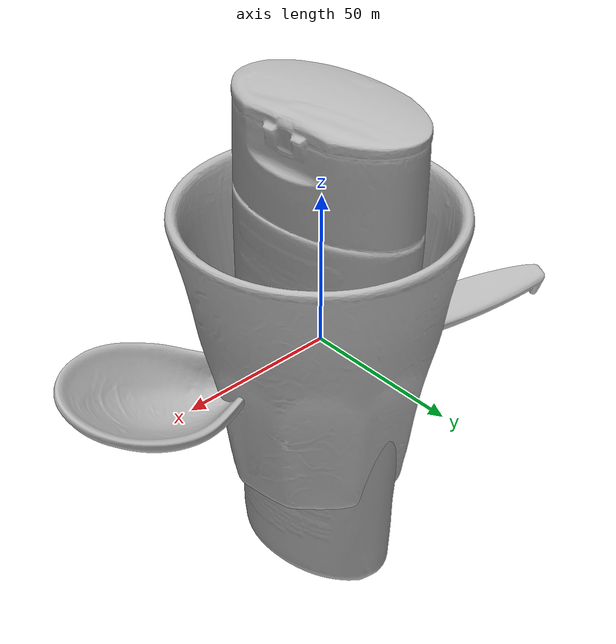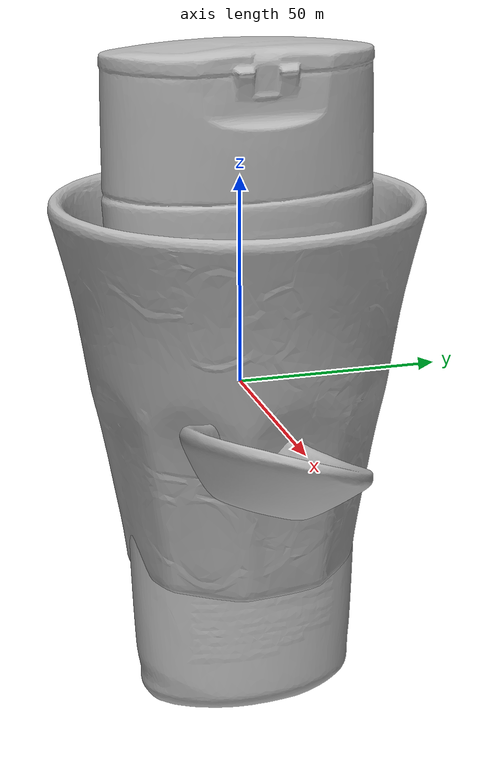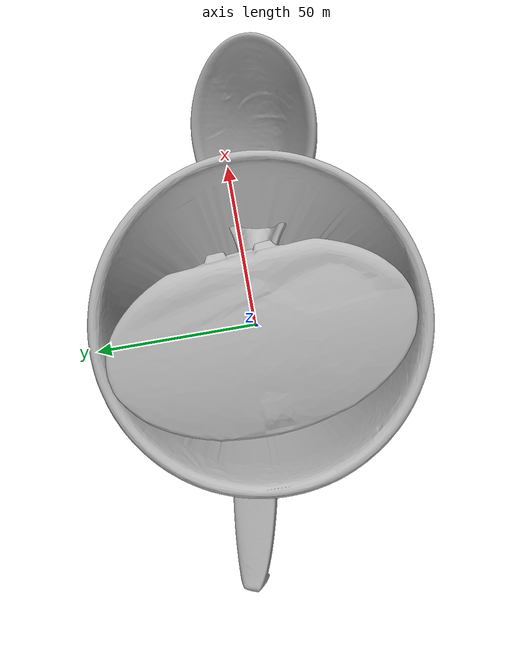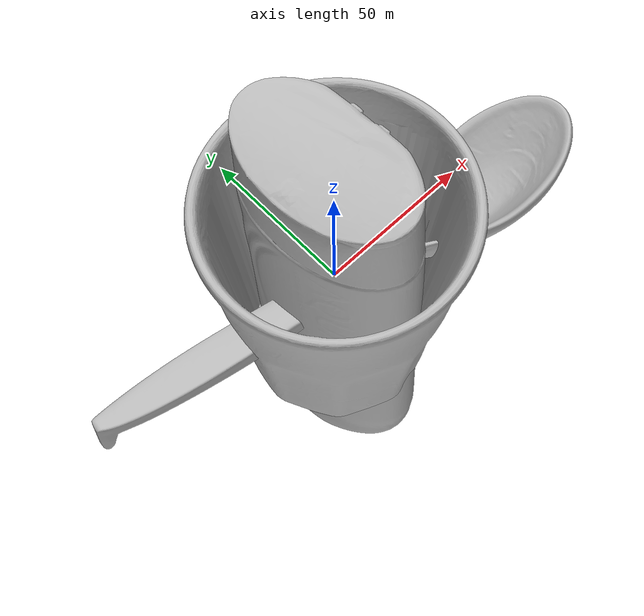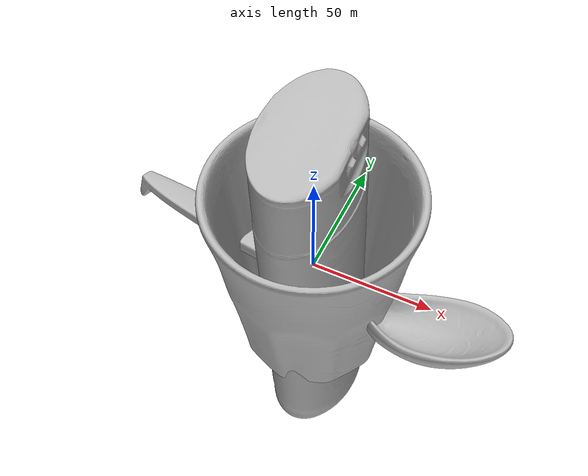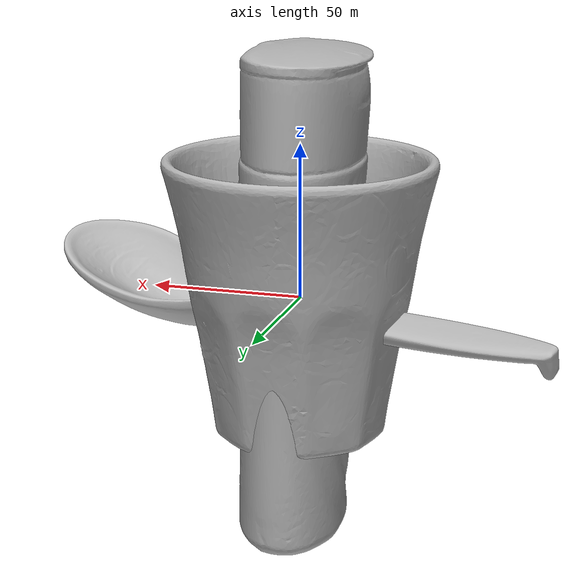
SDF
<sdf version="1.4">
 <world name="default">
  <light name="light1" type="point">
   <pose>0 0 1 0 0 0</pose>
   <diffuse>3 3 3 1</diffuse>
   <specular>3 3 3 1</specular>
  </light>
  <light name="light2" type="point">
   <pose>0 0.5 2 0 0 0</pose>
   <diffuse>1 1 1 1</diffuse>
   <specular>1 1 1 1</specular>
  </light>
  <light name="light3" type="point">
   <pose>0 0.5 2 0 0 0</pose>
   <diffuse>3 3 3 1</diffuse>
   <specular>3 3 3 1</specular>
  </light>
  <scene><ambient>0.7 0.7 0.7</ambient></scene>
  <model name="bottle1">
   <link name="link_bottle1">
    <collision name="default">
     <geometry>
      <mesh><uri>model://pure_zhen/collision_meshes/collision.obj</uri><scale>1.0 1.0 1.0</scale></mesh>
     </geometry>
     <surface>
      <friction><ode><mu>0.5</mu><mu2>0.5</mu2></ode></friction>
      <contact><ode><max_vel>0</max_vel><min_depth>0.0001</min_depth><kp>1e8</kp></ode></contact>
     </surface>
    </collision>
    <visual name="default">
     <geometry>
      <mesh><uri>model://pure_zhen/visual_meshes/visual.dae</uri><scale>1.0 1.0 1.0</scale></mesh>
     </geometry>
    </visual>
    <inertial>
     <mass>0.21128538250923157</mass>
     <pose>-8.582300506532192e-05 0.0002452346670906991 -0.0015797390369698405 -0.027642443229877835 0.005619248866174896 0.3057200614584077</pose>
     <inertia>
      <ixx>0.00063332287</ixx>
      <iyy>0.00063348823</iyy>
      <izz>6.6904315e-05</izz>
      <ixy>0</ixy>
      <ixz>0</ixz>
      <iyz>0</iyz>
     </inertia>
    </inertial>
   </link>
   <pose>0.015812527388334274 -0.37392458319664 0.0919550359249115 0.015157134821617376 0.01212956328992146 -1.8358145404571007</pose>
  </model>
  <model name="bottle2">
   <link name="link_bottle2">
    <collision name="default">
     <geometry>
      <mesh><uri>model://conditioner/collision_meshes/collision.obj</uri><scale>1.0 1.0 1.0</scale></mesh>
     </geometry>
     <surface>
      <friction><ode><mu>0.5</mu><mu2>0.5</mu2></ode></friction>
      <contact><ode><max_vel>0</max_vel><min_depth>0.0001</min_depth><kp>1e8</kp></ode></contact>
     </surface>
    </collision>
    <visual name="default">
     <geometry>
      <mesh><uri>model://conditioner/visual_meshes/visual.dae</uri><scale>1.0 1.0 1.0</scale></mesh>
     </geometry>
    </visual>
    <inertial>
     <mass>0.3611464500427246</mass>
     <pose>-0.00055994390277192 -0.0001729748910292983 0.004359682556241751 -0.005038374424784669 0.01530604350153207 0.015072341368129788</pose>
     <inertia>
      <ixx>0.00078562286</ixx>
      <iyy>0.0008415716</iyy>
      <izz>0.00012113213</izz>
      <ixy>0</ixy>
      <ixz>0</ixz>
      <iyz>0</iyz>
     </inertia>
    </inertial>
   </link>
   <pose>0.24106314778327942 -0.20936289429664612 0.08122974634170532 0.036892153375816764 -0.01566026344724022 -1.5225181827632999</pose>
  </model>
  <model name="silverware1">
   <link name="link_silverware1">
    <collision name="default">
     <geometry>
      <mesh><uri>model://doraemon_spoon/collision_meshes/collision.obj</uri><scale>1.0 1.0 1.0</scale></mesh>
     </geometry>
     <surface>
      <friction><ode><mu>0.5</mu><mu2>0.5</mu2></ode></friction>
      <contact><ode><max_vel>0</max_vel><min_depth>0.0001</min_depth><kp>1e8</kp></ode></contact>
     </surface>
    </collision>
    <visual name="default">
     <geometry>
      <mesh><uri>model://doraemon_spoon/visual_meshes/visual.dae</uri><scale>1.0 1.0 1.0</scale></mesh>
     </geometry>
    </visual>
    <inertial>
     <mass>0.02099660225212574</mass>
     <pose>-0.02216508239507675 -0.0006374581134878099 -0.003332545980811119 -0.009147162014623967 0.07380421234862718 -0.01412382746948542</pose>
     <inertia>
      <ixx>1.6446534e-06</ixx>
      <iyy>4.671061e-05</iyy>
      <izz>4.7504738e-05</izz>
      <ixy>0</ixy>
      <ixz>0</ixz>
      <iyz>0</iyz>
     </inertia>
    </inertial>
   </link>
   <pose>0.16969934105873108 -0.36399656534194946 0.014739345759153366 0.27903639720652457 -0.010337102810404983 2.9633619625359033</pose>
  </model>
  <model name="stationery1">
   <link name="link_stationery1">
    <collision name="default">
     <geometry>
      <mesh><uri>model://correction_fuid/collision_meshes/collision.obj</uri><scale>1.0 1.0 1.0</scale></mesh>
     </geometry>
     <surface>
      <friction><ode><mu>0.5</mu><mu2>0.5</mu2></ode></friction>
      <contact><ode><max_vel>0</max_vel><min_depth>0.0001</min_depth><kp>1e8</kp></ode></contact>
     </surface>
    </collision>
    <visual name="default">
     <geometry>
      <mesh><uri>model://correction_fuid/visual_meshes/visual.dae</uri><scale>1.0 1.0 1.0</scale></mesh>
     </geometry>
    </visual>
    <inertial>
     <mass>0.046645622700452805</mass>
     <pose>-0.00012557735317386687 -0.0009722909890115261 -0.001618212671019137 -0.010846607840907904 0.019488357502694276 -0.015992455488392</pose>
     <inertia>
      <ixx>4.5177083e-05</ixx>
      <iyy>2.7341744e-06</iyy>
      <izz>4.635291e-05</izz>
      <ixy>0</ixy>
      <ixz>0</ixz>
      <iyz>0</iyz>
     </inertia>
    </inertial>
   </link>
   <pose>-0.08680958300828934 0.1193852424621582 0.009632832370698452 -0.0017269159065449577 -0.05616888569158246 -0.019183644800428647</pose>
  </model>
  <model name="bowl1">
   <link name="link_bowl1">
    <collision name="default">
     <geometry>
      <mesh><uri>model://doraemon_bowl/collision_meshes/collision.obj</uri><scale>1.0 1.0 1.0</scale></mesh>
     </geometry>
     <surface>
      <friction><ode><mu>0.5</mu><mu2>0.5</mu2></ode></friction>
      <contact><ode><max_vel>0</max_vel><min_depth>0.0001</min_depth><kp>1e8</kp></ode></contact>
     </surface>
    </collision>
    <visual name="default">
     <geometry>
      <mesh><uri>model://doraemon_bowl/visual_meshes/visual.dae</uri><scale>1.0 1.0 1.0</scale></mesh>
     </geometry>
    </visual>
    <inertial>
     <mass>0.11811670660972595</mass>
     <pose>-0.014629551209509373 0.0004857121384702623 -0.0020864885300397873 -0.00509396228069995 -0.10568398533611668 -0.02642645986873745</pose>
     <inertia>
      <ixx>0.00016378764</ixx>
      <iyy>0.00021554313</iyy>
      <izz>0.00031711452</izz>
      <ixy>0</ixy>
      <ixz>0</ixz>
      <iyz>0</iyz>
     </inertia>
    </inertial>
   </link>
   <pose>-0.02682371437549591 -0.28902503848075867 0.02590586058795452 0.008606158726446088 0.006331937002608426 0.8977657013234489</pose>
  </model>
  <model name="cup1">
   <link name="link_cup1">
    <collision name="default">
     <geometry>
      <mesh><uri>model://hello_kitty_cup/collision_meshes/collision.obj</uri><scale>1.0 1.0 1.0</scale></mesh>
     </geometry>
     <surface>
      <friction><ode><mu>0.5</mu><mu2>0.5</mu2></ode></friction>
      <contact><ode><max_vel>0</max_vel><min_depth>0.0001</min_depth><kp>1e8</kp></ode></contact>
     </surface>
    </collision>
    <visual name="default">
     <geometry>
      <mesh><uri>model://hello_kitty_cup/visual_meshes/visual.dae</uri><scale>1.0 1.0 1.0</scale></mesh>
     </geometry>
    </visual>
    <inertial>
     <mass>0.06522195786237717</mass>
     <pose>0.00027251147548668087 0.0002795039035845548 0.003044978016987443 0.05779148941225366 0.007964866585370347 -0.020452001862605422</pose>
     <inertia>
      <ixx>8.981858e-05</ixx>
      <iyy>9.081978e-05</iyy>
      <izz>7.573251e-05</izz>
      <ixy>0</ixy>
      <ixz>0</ixz>
      <iyz>0</iyz>
     </inertia>
    </inertial>
   </link>
   <pose>0.11290808767080307 -0.11909181624650955 0.046214014291763306 -0.005710534738347761 0.01078656769178804 -2.045677889336264</pose>
  </model>
  <model name="plate1">
   <link name="link_plate1">
    <collision name="default">
     <geometry>
      <mesh><uri>model://hello_kitty_plate/collision_meshes/collision.obj</uri><scale>1.0 1.0 1.0</scale></mesh>
     </geometry>
     <surface>
      <friction><ode><mu>0.5</mu><mu2>0.5</mu2></ode></friction>
      <contact><ode><max_vel>0</max_vel><min_depth>0.0001</min_depth><kp>1e8</kp></ode></contact>
     </surface>
    </collision>
    <visual name="default">
     <geometry>
      <mesh><uri>model://hello_kitty_plate/visual_meshes/visual.dae</uri><scale>1.0 1.0 1.0</scale></mesh>
     </geometry>
    </visual>
    <inertial>
     <mass>0.08260300010442734</mass>
     <pose>0.0073142931796610355 0.0002893725468311459 -0.0027947169728577137 -0.00010432002488368626 -0.007054440417891238 -0.014449022362072891</pose>
     <inertia>
      <ixx>0.0001592833</ixx>
      <iyy>0.00030061565</iyy>
      <izz>0.0004564546</izz>
      <ixy>0</ixy>
      <ixz>0</ixz>
      <iyz>0</iyz>
     </inertia>
    </inertial>
   </link>
   <pose>0.19350652396678925 0.1936359852552414 0.008291400037705898 0.0004653933313444232 0.004173053297590021 0.013181337660575564</pose>
  </model>
  <model name="box4">
   <link name="link_box4">
    <collision name="default">
     <geometry>
      <mesh><uri>model://wooden_puzzle1/collision_meshes/collision.obj</uri><scale>1.0 1.0 1.0</scale></mesh>
     </geometry>
     <surface>
      <friction><ode><mu>0.5</mu><mu2>0.5</mu2></ode></friction>
      <contact><ode><max_vel>0</max_vel><min_depth>0.0001</min_depth><kp>1e8</kp></ode></contact>
     </surface>
    </collision>
    <visual name="default">
     <geometry>
      <mesh><uri>model://wooden_puzzle1/visual_meshes/visual.dae</uri><scale>1.0 1.0 1.0</scale></mesh>
     </geometry>
    </visual>
    <inertial>
     <mass>0.034562814980745316</mass>
     <pose>-0.0001735068071866408 7.97226166469045e-05 -9.191555000143126e-05 -0.07784459827727222 -0.2636103773563706 -0.5528705263726328</pose>
     <inertia>
      <ixx>6.5210584e-06</ixx>
      <iyy>6.395525e-06</iyy>
      <izz>6.471823e-06</izz>
      <ixy>0</ixy>
      <ixz>0</ixz>
      <iyz>0</iyz>
     </inertia>
    </inertial>
   </link>
   <pose>0.1098528727889061 -0.03335510566830635 0.01680201292037964 0.010512067517047858 -0.00945692513915374 1.638013643830072</pose>
  </model>
  <physics type="ode">
   <max_contacts>50</max_contacts>
   <ode>
    <solver><type>quick</type><iters>75</iters></solver>
    <constraints>
     <contact_max_correcting_vel>0</contact_max_correcting_vel>
     <contact_surface_layer>0</contact_surface_layer>
    </constraints>
   </ode>
  </physics>
 </world>
</sdf>
